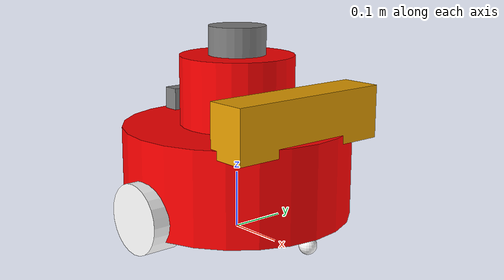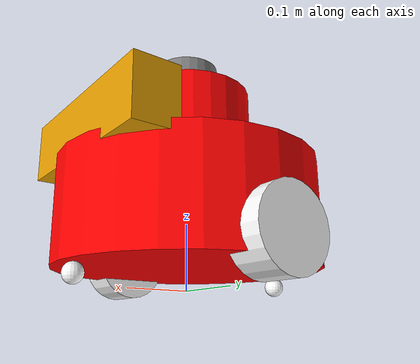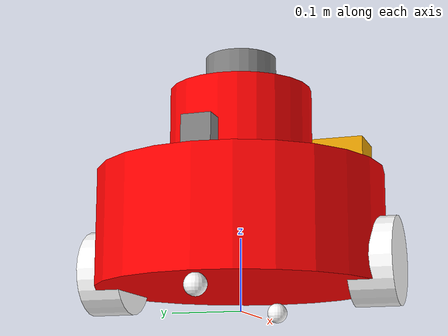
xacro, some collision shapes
<?xml version="1.0" ?>
<robot name="mbot" xmlns:xacro="http://www.ros.org/wiki/xacro">

  <xacro:property name="M_PI" value="3.1415926" />

  <xacro:property name="wheel_joint_x" value="0" />
  <xacro:property name="wheel_joint_y" value="0.19" />
  <xacro:property name="wheel_joint_z" value="0.05" />

  <xacro:property name="wheel_mass"   value="0.2" />
  <xacro:property name="wheel_length" value="0.06" />
  <xacro:property name="wheel_radius" value="0.06" />

  <xacro:property name="caster_joint_x" value="0.18" />
  <xacro:property name="caster_joint_y" value="0" />
  <xacro:property name="caster_joint_z" value="0.095" />

  <xacro:property name="caster_mass"   value="0.1" />
  <xacro:property name="caster_radius" value="0.015" />

  <xacro:property name="base_mass"   value="1" />
  <xacro:property name="base_length" value="0.16" />
  <xacro:property name="base_radius" value="0.2" />

  <xacro:property name="stage_mass"   value="0.5" />
  <xacro:property name="stage_length" value="0.12" />
  <xacro:property name="stage_radius" value="0.1" />

  <xacro:property name="camera_joint_x" value="0.17" />
  <xacro:property name="camera_joint_y" value="0" />
  <xacro:property name="camera_joint_z" value="0.1" />

  <xacro:property name="kinect_joint_x" value="0.15" />
  <xacro:property name="kinect_joint_y" value="0" />
  <xacro:property name="kinect_joint_z" value="0.11" />

  <xacro:property name="laser_joint_x" value="0" />
  <xacro:property name="laser_joint_y" value="0" />
  <xacro:property name="laser_joint_z" value="0.085" />

  <material name="white">
    <color rgba="1 1 1 0.9"/>
  </material>
  <material name="red">
    <color rgba="1 0 0 1"/>
  </material>
  <material name="grey">
    <color rgba="0.5 0.5 0.5 1"/>
  </material>

  <xacro:macro name="cylinder_inertial_matrix" params="m r h">
      <inertial>
          <mass value="${m}" />
          <inertia ixx="${m*(3*r*r+h*h)/12}" ixy = "0" ixz = "0"
              iyy="${m*(3*r*r+h*h)/12}" iyz = "0"
              izz="${m*r*r/2}" />
      </inertial>
  </xacro:macro>

  <!-- Macro for inertia matrix -->
  <xacro:macro name="sphere_inertial_matrix" params="m r">
      <inertial>
          <mass value="${m}" />
          <inertia ixx="${2*m*r*r/5}" ixy="0" ixz="0"
              iyy="${2*m*r*r/5}" iyz="0"
              izz="${2*m*r*r/5}" />
      </inertial>
  </xacro:macro>

  <xacro:macro name="base_stage">
    <link name="base_footprint">
        <visual>
            <origin xyz="0 0 0" rpy="0 0 0" />
            <geometry>
                <box size="0.001 0.001 0.001" />
            </geometry>
        </visual>
    </link>
    <gazebo reference="base_footprint">
        <turnGravityOff>false</turnGravityOff>
    </gazebo>

    <joint name="base_link_joint" type="fixed">
        <origin xyz="0 0 ${base_length/2 + caster_radius*2}" rpy="0 0 0" />
        <parent link="base_footprint"/>
        <child link="base_link" />
    </joint>

    <link name="base_link">
      <visual>
        <origin xyz="0 0 0" rpy="0 0 0"/>
        <geometry>
          <cylinder length="${base_length}" radius="${base_radius}"/>
        </geometry>
        <material name="red" />
      </visual>
      <collision>
          <origin xyz=" 0 0 0" rpy="0 0 0" />
          <geometry>
              <cylinder length="${base_length}" radius="${base_radius}"/>
          </geometry>
      </collision>
      <xacro:cylinder_inertial_matrix  m="${base_mass}" r="${base_radius}" h="${base_length}" />
    </link>

    <gazebo reference="base_link">
        <material>Gazebo/Red</material>
    </gazebo>

    <joint name="stage_joint" type="fixed">
      <origin xyz="0 0 ${(base_length + stage_length)/2}" rpy="0 0 0" />
      <parent link="base_link"/>
      <child link="stage_link" />
    </joint>

    <link name="stage_link">
      <visual>
        <origin xyz="0 0 0" rpy="0 0 0"/>
        <geometry>
          <cylinder length="${stage_length}" radius="${stage_radius}"/>
        </geometry>
        <material name="red" />
      </visual>
      <collision>
          <origin xyz=" 0 0 0" rpy="0 0 0" />
          <geometry>
              <cylinder length="${stage_length}" radius="${stage_radius}"/>
          </geometry>
      </collision>
      <xacro:cylinder_inertial_matrix  m="${stage_mass}" r="${stage_radius}" h="${stage_length}" />
    </link>

    <gazebo reference="stage_link">
        <material>Gazebo/Red</material>
    </gazebo>

  </xacro:macro>

  <xacro:macro name="wheel" params="prefix reflect">
    <joint name="${prefix}_wheel_joint" type="continuous">
      <origin xyz="${wheel_joint_x} ${reflect*wheel_joint_y} ${-wheel_joint_z}" rpy="0 0 0" />
      <parent link="base_link" />
      <child link="${prefix}_wheel_link" />
      <axis xyz="0 1 0" />
    </joint>

    <link name="${prefix}_wheel_link">
      <visual>
        <origin xyz="0 0 0" rpy="${M_PI/2} 0 0"/>
        <geometry>
          <cylinder length="${wheel_length}" radius="${wheel_radius}"/>
        </geometry>
        <material name="white" />
      </visual>
      <collision>
          <origin xyz="0 0 0" rpy="${M_PI/2} 0 0" />
          <geometry>
              <cylinder length="${wheel_length}" radius="${wheel_radius}"/>
          </geometry>
      </collision>
      <xacro:cylinder_inertial_matrix  m="${wheel_mass}" r="${wheel_radius}" h="${wheel_length}" />
    </link>

    <gazebo reference="${prefix}_wheel_link">
        <material>Gazebo/White</material>
    </gazebo>

    <!-- Transmission is important to link the joints and the controller -->
    <transmission name="${prefix}_wheel_joint_trans">
        <type>transmission_interface/SimpleTransmission</type>
        <joint name="${prefix}_wheel_joint" >
            <hardwareInterface>hardware_interface/VelocityJointInterface</hardwareInterface>
        </joint>
        <actuator name="${prefix}_wheel_joint_motor">
            <hardwareInterface>hardware_interface/VelocityJointInterface</hardwareInterface>
            <mechanicalReduction>1</mechanicalReduction>
        </actuator>
    </transmission>

  </xacro:macro>

  <xacro:macro name="caster" params="prefix reflect">
    <joint name="${prefix}_caster_joint" type="continuous">
      <origin xyz="${reflect*caster_joint_x} ${caster_joint_y} ${-caster_joint_z}" rpy="0 0 0" />
      <parent link="base_link"/>
      <child link="${prefix}_caster_link" />
      <axis xyz="0 1 0" />
    </joint>

    <link name="${prefix}_caster_link">
      <visual>
        <origin xyz="0 0 0" rpy="0 0 0" />
        <geometry>
          <sphere radius="${caster_radius}" />
        </geometry>
        <material name="white" />
      </visual>
      <collision>
          <origin xyz="0 0 0" rpy="0 0 0"/>
          <geometry>
              <sphere radius="${caster_radius}" />
          </geometry>
      </collision>
      <xacro:sphere_inertial_matrix  m="${caster_mass}" r="${caster_radius}" />
    </link>

    <gazebo reference="${prefix}_caster_link">
        <material>Gazebo/White</material>
    </gazebo>

  </xacro:macro>

  <xacro:macro name="robot_base">
    <xacro:base_stage />

    <xacro:wheel prefix="left"  reflect="1"/>
    <xacro:wheel prefix="right"  reflect="-1"/>

    <xacro:caster prefix="front"  reflect="1"/>
    <xacro:caster prefix="back"  reflect="-1"/>

    <!-- Add differential controller plug-in for differential wheel robot -->
    <gazebo>
        <plugin name="differential_drive_controller"
                filename="libgazebo_ros_diff_drive.so">
            <!-- Set the Debug output level -->
            <rosDebugLevel>Debug</rosDebugLevel>
            <!-- Whether to publish Wheel TF topic -->
            <publishWheelTF>true</publishWheelTF>
            <!-- Set the robot namespace -->
            <robotNamespace>/</robotNamespace>
            <!-- Whether to publish TF -->
            <publishTf>1</publishTf>
            <!-- publish Joint/State topic -->
            <publishWheelJointState>true</publishWheelJointState>
            <alwaysOn>true</alwaysOn>
            <!-- Set the update rate -->
            <updateRate>100.0</updateRate>
            <legacyMode>true</legacyMode>
            <!-- Set the left and right wheel joints -->
            <leftJoint>left_wheel_joint</leftJoint>
            <rightJoint>right_wheel_joint</rightJoint>
            <wheelSeparation>${wheel_joint_y*2}</wheelSeparation>
            <!-- Set the wheel diameter -->
            <wheelDiameter>${2*wheel_radius}</wheelDiameter>
            <!-- Whetehr to monitor TF topic -->
            <broadcastTF>1</broadcastTF>
            <!-- Set the wheel torque -->
            <wheelTorque>30</wheelTorque>
            <wheelAcceleration>1.8</wheelAcceleration>
            <!-- The controller subscribs to the speed and direction control topic: /cmd_vel -->
            <commandTopic>cmd_vel</commandTopic>
            <!-- The reference coordinate system for odometer data, commonly referred to as odom -->
            <odometryFrame>odom</odometryFrame>
            <!-- Mileage and location data topic: /odom -->
            <odometryTopic>odom</odometryTopic>
            <robotBaseFrame>base_footprint</robotBaseFrame>
        </plugin>
    </gazebo>
  </xacro:macro>

  <xacro:robot_base />

  <xacro:include filename="$(find mbot_gazebo)/urdf/sensor/camera.xacro" />
  <xacro:usb_camera joint_x="${camera_joint_x}" joint_y="${camera_joint_y}" joint_z="${camera_joint_z}"/>

  <xacro:include filename="$(find mbot_gazebo)/urdf/sensor/kinect.xacro" />
  <xacro:kinect joint_x="${kinect_joint_x}" joint_y="${kinect_joint_y}" joint_z="${kinect_joint_z}"/>

  <xacro:include filename="$(find mbot_gazebo)/urdf/sensor/laser.xacro" />
  <xacro:laser joint_x="${laser_joint_x}" joint_y="${laser_joint_y}" joint_z="${laser_joint_z}"/>

</robot>

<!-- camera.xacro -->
<robot name="mbot" xmlns:xacro="http://www.ros.org/wiki/xacro">

  <xacro:macro name="usb_camera" params="joint_x joint_y joint_z">
    <joint name="camera_joint" type="fixed">
      <origin xyz="${-joint_x} ${joint_y} ${joint_z}" rpy="0 0 ${M_PI}" />
      <parent link="base_link"/>
      <child link="camera_link" />
    </joint>

    <link name="camera_link">
      <!-- Set camera appearance parameters -->
      <visual>
        <origin xyz="0 0 0" rpy="0 0 0" />
        <geometry>
          <box size="0.03 0.04 0.04" />
        </geometry>
        <material name="grey" />
      </visual>

      <!-- Set the collision parameters -->
      <collision>
          <origin xyz="0.0 0.0 0.0" rpy="0 0 0" />
          <geometry>
              <box size="0.03 0.04 0.04" />
          </geometry>
      </collision>

      <!-- Set the inertial matrix -->
      <inertial>
          <mass value="0.1" />
          <origin xyz="0 0 0" />
          <inertia ixx="0.01" ixy="0.0" ixz="0.0"
                    iyy="0.01" iyz="0.0"
                    izz="0.01" />
      </inertial>

    </link>

    <!-- Set the look of the camera in gazebo -->
    <gazebo reference="camera_link">
        <material>Gazebo/Grey</material>
    </gazebo>

    <!-- Add camera plug-in in gazebo -->
    <gazebo reference="camera_link">
         <!-- Set the Type and name of sensor -->
        <sensor type="camera" name="camera_node">
            <!-- Set the maximum frequency of image updates -->
            <update_rate>30.0</update_rate>
            <!-- Specific configuration of the camera -->
            <camera name="head">
                <horizontal_fov>1.3962634</horizontal_fov>
                <image>
                    <width>1280</width>
                    <height>720</height>
                    <format>R8G8B8</format>
                </image>
                <clip>
                    <near>0.02</near>
                    <far>300</far>
                </clip>
                <noise>
                    <type>gaussian</type>
                    <mean>0.0</mean>
                    <stddev>0.007</stddev>
                </noise>
            </camera>
            <!-- Link to the camera plugin provided by gazebo -->
            <plugin name="gazebo_camera" filename="libgazebo_ros_camera.so">
                <alwaysOn>true</alwaysOn>
                <updateRate>0.0</updateRate>
                <!-- Specify the name of the topic the plug-in publishes -->
                <cameraName>/camera</cameraName>
                <imageTopicName>image_raw</imageTopicName>
                <cameraInfoTopicName>camera_info</cameraInfoTopicName>
                <!-- Specify a coordinate system for the image -->
                <frameName>camera_link</frameName>
                <hackBaseline>0.07</hackBaseline>
                <distortionK1>0.0</distortionK1>
                <distortionK2>0.0</distortionK2>
                <distortionK3>0.0</distortionK3>
                <distortionT1>0.0</distortionT1>
                <distortionT2>0.0</distortionT2>
            </plugin>
        </sensor>
    </gazebo>

  </xacro:macro>

</robot>

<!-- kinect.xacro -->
<robot name="mbot" xmlns:xacro="http://www.ros.org/wiki/xacro">

  <xacro:macro name="kinect" params="joint_x joint_y joint_z">
    <joint name="kinect_joint" type="fixed">
      <origin xyz="${joint_x} ${joint_y} ${joint_z}" rpy="0 0 0" />
      <parent link="base_link"/>
      <child link="kinect_link" />
    </joint>

    <link name="kinect_link">
      <visual>
        <origin xyz="0 0 0" rpy="0 0 0" />
        <geometry>
          <mesh filename="package://mbot_gazebo/meshes/kinect.dae" />
        </geometry>
      </visual>
      <collision>
          <geometry>
              <box size="0.07 0.3 0.09"/>
          </geometry>
      </collision>
    </link>

    <joint name="kinect_optical_joint" type="fixed">
        <origin xyz="0 0 0" rpy="-1.5708 0 -1.5708"/>
        <parent link="kinect_link"/>
        <child link="kinect_frame_optical"/>
    </joint>

    <link name="kinect_frame_optical"/>

    <gazebo reference="kinect_link">
        <sensor type="depth" name="kinect">
            <always_on>true</always_on>
            <update_rate>20.0</update_rate>
            <camera>
                <horizontal_fov>${60.0*M_PI/180.0}</horizontal_fov>
                <image>
                    <format>R8G8B8</format>
                    <width>640</width>
                    <height>480</height>
                </image>
                <clip>
                    <near>0.05</near>
                    <far>8.0</far>
                </clip>
            </camera>
            <plugin name="kinect_kinect_controller" filename="libgazebo_ros_openni_kinect.so">
                <cameraName>kinect</cameraName>
                <alwaysOn>true</alwaysOn>
                <updateRate>10</updateRate>
                <imageTopicName>rgb/image_raw</imageTopicName>
                <depthImageTopicName>depth/image_raw</depthImageTopicName>
                <pointCloudTopicName>depth/points</pointCloudTopicName>
                <cameraInfoTopicName>rgb/camera_info</cameraInfoTopicName>
                <depthImageCameraInfoTopicName>depth/camera_info</depthImageCameraInfoTopicName>
                <frameName>kinect_frame_optical</frameName>
                <baseline>0.1</baseline>
                <distortion_k1>0.0</distortion_k1>
                <distortion_k2>0.0</distortion_k2>
                <distortion_k3>0.0</distortion_k3>
                <distortion_t1>0.0</distortion_t1>
                <distortion_t2>0.0</distortion_t2>
                <pointCloudCutoff>0.4</pointCloudCutoff>
            </plugin>
        </sensor>
    </gazebo>

  </xacro:macro>

</robot>

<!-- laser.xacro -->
<robot name="mbot" xmlns:xacro="http://www.ros.org/wiki/xacro">

  <xacro:macro name="laser" params="joint_x joint_y joint_z">
    <joint name="laser_joint" type="fixed">
      <origin xyz="${joint_x} ${joint_y} ${joint_z}" rpy="0 0 0" />
      <parent link="stage_link"/>
      <child link="laser_link" />
    </joint>

    <link name="laser_link">
      <visual>
        <origin xyz="0 0 0" rpy="0 0 0" />
        <geometry>
          <cylinder length="0.05" radius="0.05"/>
        </geometry>
        <material name="grey"/>
      </visual>
    </link>
  </xacro:macro>
</robot>
